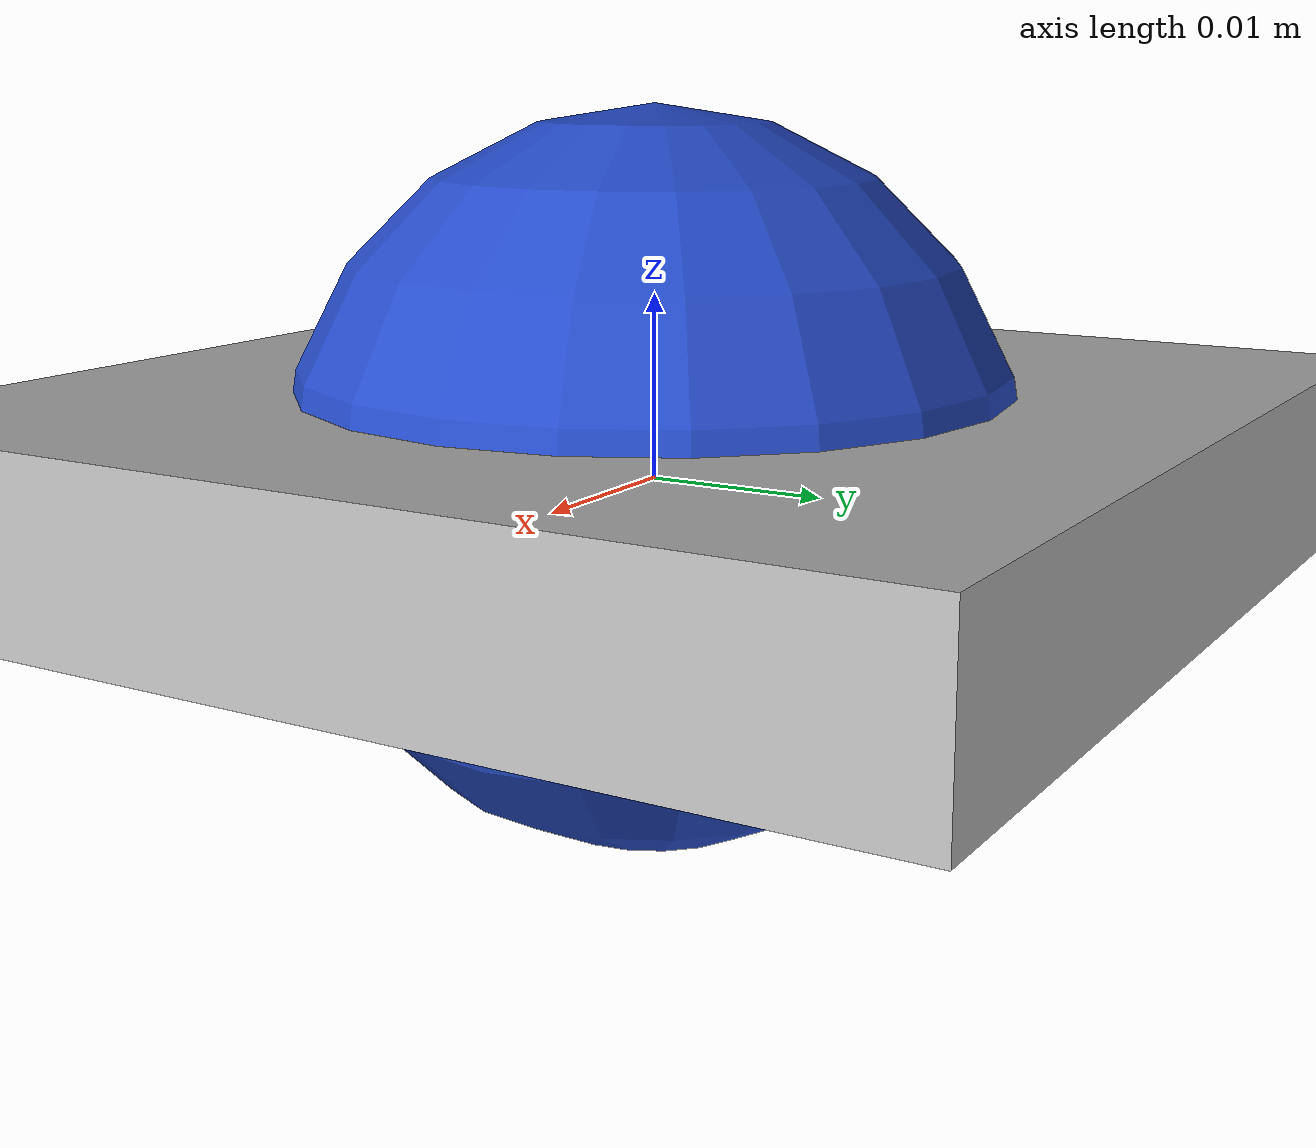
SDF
<sdf version='1.7'>
  <model name='Checkerboard_L02'>

    <include>
      <uri>model://Plane_Base_Model</uri>
    </include>

    <link name='Plane_Pattern'>
      <visual name='Pattern_Visual'>
        <cast_shadows>0</cast_shadows>
        <pose>0 0 0.0 0 0 0</pose>
        <geometry>
          <box>
            <size>4 4 0.01</size>
          </box>
        </geometry>
        <material>
        <script>
            <uri>model://Checkerboard_L02/Surface_Texture/Custom_Material.material</uri>
            <name>Custom_Material</name>
        </script>
        </material>

      </visual>

    </link>

    <joint name='Surface_Pattern_Joint' type='fixed'>
      <parent>Plane_Base_Model::Surface_Link</parent>
      <child>Plane_Pattern</child>
    </joint>

    <static>0</static>

  <allow_auto_disable>1</allow_auto_disable>
  </model>
</sdf>

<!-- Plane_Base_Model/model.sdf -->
<sdf version='1.7'>
  <model name='Plane_Base_Model'>
    <static>0</static>
    <link name='Surface_Link'>
      <pose>0 0 0 0 3.14 0</pose>
      <inertial>
        <inertia>
          <ixx>500</ixx>
          <ixy>0</ixy>
          <ixz>0</ixz>
          <iyy>500</iyy>
          <iyz>0</iyz>
          <izz>1000</izz>
        </inertia>
        <mass>1000</mass>
        <pose>0 0 0 0 -0 0</pose>
      </inertial>
      <self_collide>0</self_collide>
      <enable_wind>0</enable_wind>
      <kinematic>0</kinematic>
      <gravity>0</gravity>

      <visual name='Surface_Center'>
        <cast_shadows>0</cast_shadows>
        <pose>0 0 0 0 0 0</pose>
        <geometry>
          <sphere>
            <radius>0.02</radius>
          </sphere>
        </geometry>
        <material>
          <script>
            <name>Gazebo/Blue</name>
            <uri>file://media/materials/scripts/gazebo.material</uri>
          </script>
          <shader type='pixel'>
            <normal_map>__default__</normal_map>
          </shader>
        </material>
      </visual>
      <collision name='Surface_Collision'>
        <laser_retro>0</laser_retro>
        <max_contacts>10</max_contacts>
        <pose>0 0 0 0 -0 0</pose>
        <geometry>
          <box>
            <size>20 2 0.01</size>
          </box>
        </geometry>
        <surface>
          <friction>
            <ode>
              <mu>100000</mu>
              <mu2>100000</mu2>
              <fdir1>0 0 0</fdir1>
              <slip1>0</slip1>
              <slip2>0</slip2>
            </ode>
            <torsional>
              <coefficient>1</coefficient>
              <patch_radius>0</patch_radius>
              <surface_radius>0</surface_radius>
              <use_patch_radius>1</use_patch_radius>
              <ode>
                <slip>0</slip>
              </ode>
            </torsional>
          </friction>
          <bounce>
            <restitution_coefficient>0</restitution_coefficient>
            <threshold>1e+06</threshold>
          </bounce>
          <contact>
            <collide_without_contact>0</collide_without_contact>
            <collide_without_contact_bitmask>1</collide_without_contact_bitmask>
            <collide_bitmask>65535</collide_bitmask>
            <ode>
              <soft_cfm>0</soft_cfm>
              <soft_erp>0.2</soft_erp>
              <kp>1e+13</kp>
              <kd>1</kd>
              <max_vel>0.01</max_vel>
              <min_depth>0</min_depth>
            </ode>
            <bullet>
              <split_impulse>1</split_impulse>
              <split_impulse_penetration_threshold>-0.01</split_impulse_penetration_threshold>
              <soft_cfm>0</soft_cfm>
              <soft_erp>0.2</soft_erp>
              <kp>1e+13</kp>
              <kd>1</kd>
            </bullet>
          </contact>
        </surface>
      </collision>
      <sensor name='Surface_Contact_Sensor' type='contact'>
        <always_on>1</always_on>
        <visualize>1</visualize>
        <contact>
          <collision>Surface_Collision</collision>
          <topic>__default_topic__</topic>
        </contact>
        <plugin name='Surface_Contact_Plugin' filename='libgazebo_ros_bumper.so'>
          <bumperTopicName>/ENV/BodyContact</bumperTopicName>
          <frameName>Surface_Link</frameName>
          <alwaysOn>true</alwaysOn>
          <updateRate>500</updateRate>
        </plugin>
        <pose>0 0 0 0 0 0</pose>
      </sensor>
    </link>

    <plugin name='Landing_Surface_Pose_Plugin' filename='libLanding_Surface_Pose_Plugin.so'>
        <jointName>Landing_Surface_Joint</jointName>
        <topicName>/ENV/Surface_ForceTorque_Sensor</topicName>
    </plugin>

  <allow_auto_disable>1</allow_auto_disable>
  </model>
</sdf>
